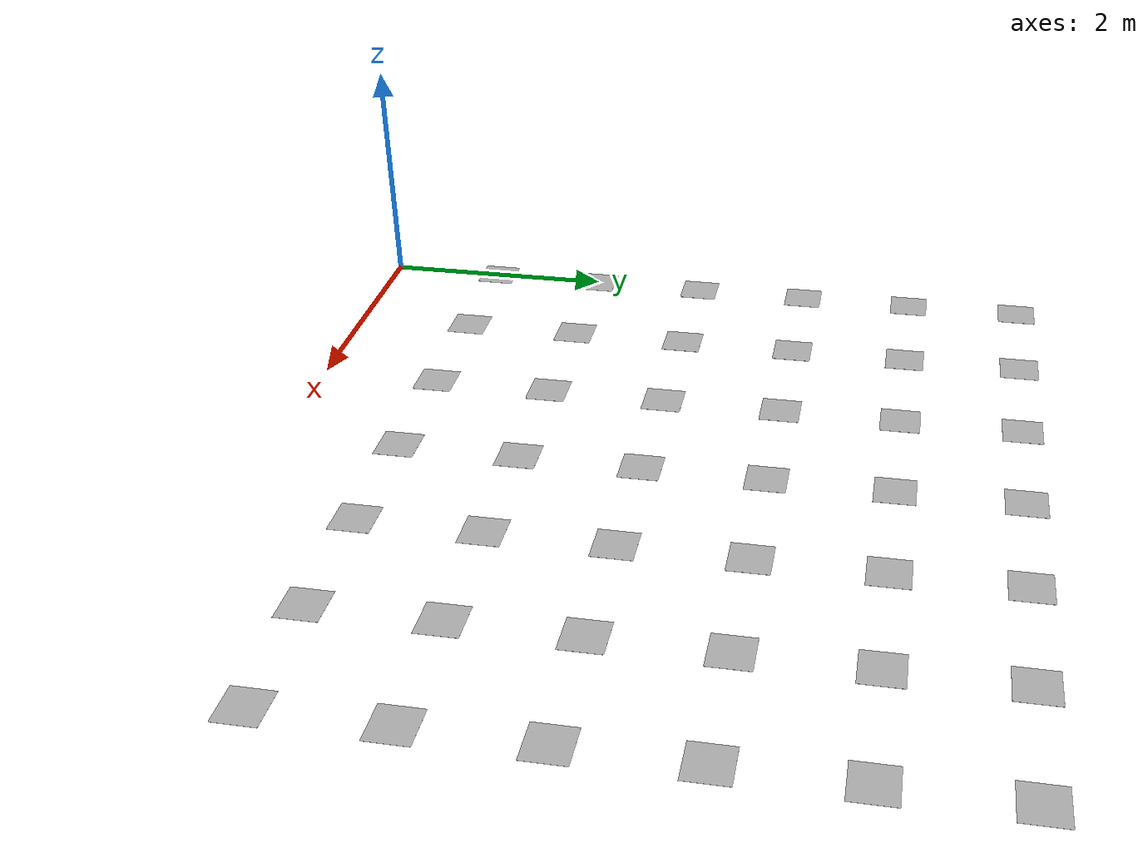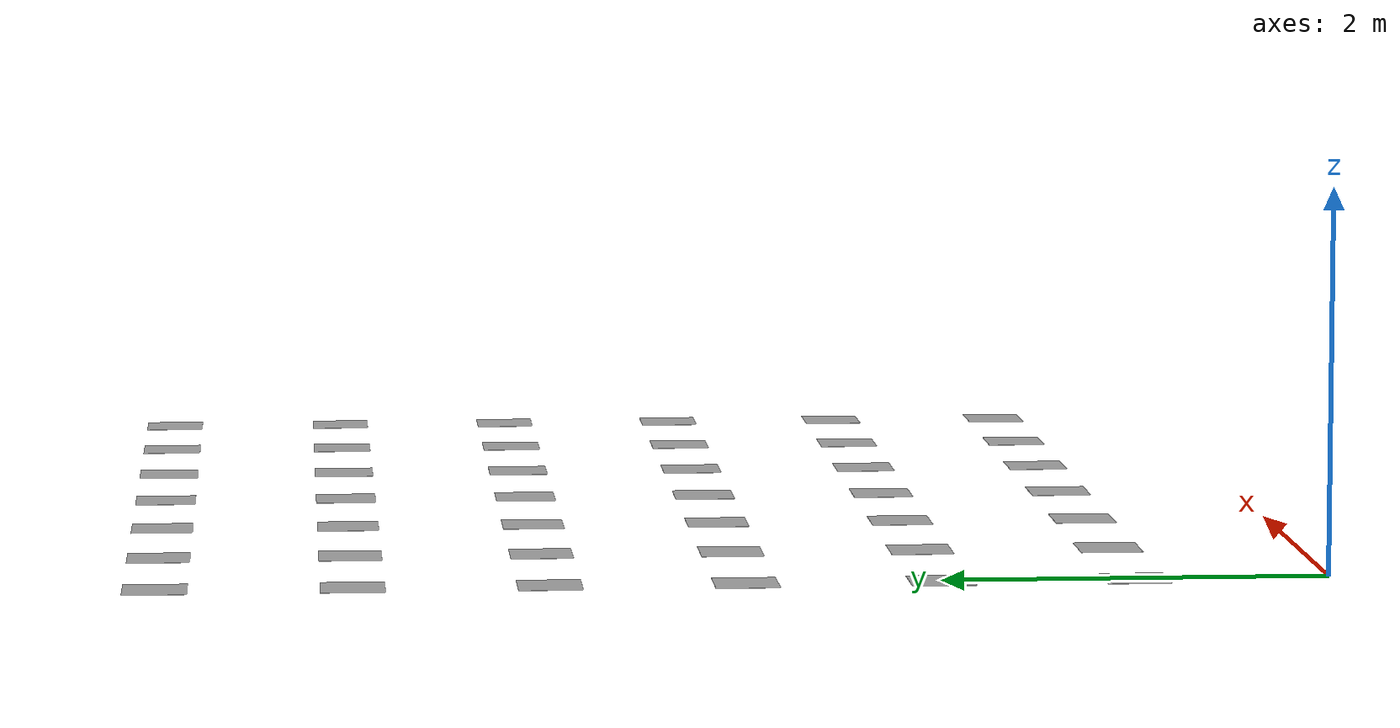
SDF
<?xml version='1.0' encoding='UTF-8'?>
<sdf version="1.6">
  <model name="aruco_marker">
    <static>true</static>
    <link name="link">

      <visual name="0">
        <pose>0.0 6.0 0 0 0 0</pose>
        <geometry>
          <box>
            <size>0.33 0.33 0.001</size>
          </box>
        </geometry>
        <material>
          <script>
            <uri>model://aruco_7x7/materials/scripts</uri>
            <uri>model://aruco_7x7/materials/textures</uri>
            <name>aruco/marker_2_0</name>
          </script>
        </material>
      </visual>

      <visual name="1">
        <pose>1.0 6.0 0 0 0 0</pose>
        <geometry>
          <box>
            <size>0.33 0.33 0.001</size>
          </box>
        </geometry>
        <material>
          <script>
            <uri>model://aruco_7x7/materials/scripts</uri>
            <uri>model://aruco_7x7/materials/textures</uri>
            <name>aruco/marker_2_1</name>
          </script>
        </material>
      </visual>

      <visual name="10">
        <pose>2.0 6.0 0 0 0 0</pose>
        <geometry>
          <box>
            <size>0.33 0.33 0.001</size>
          </box>
        </geometry>
        <material>
          <script>
            <uri>model://aruco_7x7/materials/scripts</uri>
            <uri>model://aruco_7x7/materials/textures</uri>
            <name>aruco/marker_2_10</name>
          </script>
        </material>
      </visual>

      <visual name="11">
        <pose>3.0 6.0 0 0 0 0</pose>
        <geometry>
          <box>
            <size>0.33 0.33 0.001</size>
          </box>
        </geometry>
        <material>
          <script>
            <uri>model://aruco_7x7/materials/scripts</uri>
            <uri>model://aruco_7x7/materials/textures</uri>
            <name>aruco/marker_2_11</name>
          </script>
        </material>
      </visual>

      <visual name="12">
        <pose>4.0 6.0 0 0 0 0</pose>
        <geometry>
          <box>
            <size>0.33 0.33 0.001</size>
          </box>
        </geometry>
        <material>
          <script>
            <uri>model://aruco_7x7/materials/scripts</uri>
            <uri>model://aruco_7x7/materials/textures</uri>
            <name>aruco/marker_2_12</name>
          </script>
        </material>
      </visual>

      <visual name="13">
        <pose>5.0 6.0 0 0 0 0</pose>
        <geometry>
          <box>
            <size>0.33 0.33 0.001</size>
          </box>
        </geometry>
        <material>
          <script>
            <uri>model://aruco_7x7/materials/scripts</uri>
            <uri>model://aruco_7x7/materials/textures</uri>
            <name>aruco/marker_2_13</name>
          </script>
        </material>
      </visual>

      <visual name="14">
        <pose>6.0 6.0 0 0 0 0</pose>
        <geometry>
          <box>
            <size>0.33 0.33 0.001</size>
          </box>
        </geometry>
        <material>
          <script>
            <uri>model://aruco_7x7/materials/scripts</uri>
            <uri>model://aruco_7x7/materials/textures</uri>
            <name>aruco/marker_2_14</name>
          </script>
        </material>
      </visual>

      <visual name="15">
        <pose>0.0 5.0 0 0 0 0</pose>
        <geometry>
          <box>
            <size>0.33 0.33 0.001</size>
          </box>
        </geometry>
        <material>
          <script>
            <uri>model://aruco_7x7/materials/scripts</uri>
            <uri>model://aruco_7x7/materials/textures</uri>
            <name>aruco/marker_2_15</name>
          </script>
        </material>
      </visual>

      <visual name="16">
        <pose>1.0 5.0 0 0 0 0</pose>
        <geometry>
          <box>
            <size>0.33 0.33 0.001</size>
          </box>
        </geometry>
        <material>
          <script>
            <uri>model://aruco_7x7/materials/scripts</uri>
            <uri>model://aruco_7x7/materials/textures</uri>
            <name>aruco/marker_2_16</name>
          </script>
        </material>
      </visual>

      <visual name="18">
        <pose>2.0 5.0 0 0 0 0</pose>
        <geometry>
          <box>
            <size>0.33 0.33 0.001</size>
          </box>
        </geometry>
        <material>
          <script>
            <uri>model://aruco_7x7/materials/scripts</uri>
            <uri>model://aruco_7x7/materials/textures</uri>
            <name>aruco/marker_2_18</name>
          </script>
        </material>
      </visual>

      <visual name="19">
        <pose>3.0 5.0 0 0 0 0</pose>
        <geometry>
          <box>
            <size>0.33 0.33 0.001</size>
          </box>
        </geometry>
        <material>
          <script>
            <uri>model://aruco_7x7/materials/scripts</uri>
            <uri>model://aruco_7x7/materials/textures</uri>
            <name>aruco/marker_2_19</name>
          </script>
        </material>
      </visual>

      <visual name="2">
        <pose>4.0 5.0 0 0 0 0</pose>
        <geometry>
          <box>
            <size>0.33 0.33 0.001</size>
          </box>
        </geometry>
        <material>
          <script>
            <uri>model://aruco_7x7/materials/scripts</uri>
            <uri>model://aruco_7x7/materials/textures</uri>
            <name>aruco/marker_2_2</name>
          </script>
        </material>
      </visual>

      <visual name="20">
        <pose>5.0 5.0 0 0 0 0</pose>
        <geometry>
          <box>
            <size>0.33 0.33 0.001</size>
          </box>
        </geometry>
        <material>
          <script>
            <uri>model://aruco_7x7/materials/scripts</uri>
            <uri>model://aruco_7x7/materials/textures</uri>
            <name>aruco/marker_2_20</name>
          </script>
        </material>
      </visual>

      <visual name="21">
        <pose>6.0 5.0 0 0 0 0</pose>
        <geometry>
          <box>
            <size>0.33 0.33 0.001</size>
          </box>
        </geometry>
        <material>
          <script>
            <uri>model://aruco_7x7/materials/scripts</uri>
            <uri>model://aruco_7x7/materials/textures</uri>
            <name>aruco/marker_2_21</name>
          </script>
        </material>
      </visual>

      <visual name="22">
        <pose>0.0 4.0 0 0 0 0</pose>
        <geometry>
          <box>
            <size>0.33 0.33 0.001</size>
          </box>
        </geometry>
        <material>
          <script>
            <uri>model://aruco_7x7/materials/scripts</uri>
            <uri>model://aruco_7x7/materials/textures</uri>
            <name>aruco/marker_2_22</name>
          </script>
        </material>
      </visual>

      <visual name="23">
        <pose>1.0 4.0 0 0 0 0</pose>
        <geometry>
          <box>
            <size>0.33 0.33 0.001</size>
          </box>
        </geometry>
        <material>
          <script>
            <uri>model://aruco_7x7/materials/scripts</uri>
            <uri>model://aruco_7x7/materials/textures</uri>
            <name>aruco/marker_2_23</name>
          </script>
        </material>
      </visual>

      <visual name="24">
        <pose>2.0 4.0 0 0 0 0</pose>
        <geometry>
          <box>
            <size>0.33 0.33 0.001</size>
          </box>
        </geometry>
        <material>
          <script>
            <uri>model://aruco_7x7/materials/scripts</uri>
            <uri>model://aruco_7x7/materials/textures</uri>
            <name>aruco/marker_2_24</name>
          </script>
        </material>
      </visual>

      <visual name="25">
        <pose>3.0 4.0 0 0 0 0</pose>
        <geometry>
          <box>
            <size>0.33 0.33 0.001</size>
          </box>
        </geometry>
        <material>
          <script>
            <uri>model://aruco_7x7/materials/scripts</uri>
            <uri>model://aruco_7x7/materials/textures</uri>
            <name>aruco/marker_2_25</name>
          </script>
        </material>
      </visual>

      <visual name="26">
        <pose>4.0 4.0 0 0 0 0</pose>
        <geometry>
          <box>
            <size>0.33 0.33 0.001</size>
          </box>
        </geometry>
        <material>
          <script>
            <uri>model://aruco_7x7/materials/scripts</uri>
            <uri>model://aruco_7x7/materials/textures</uri>
            <name>aruco/marker_2_26</name>
          </script>
        </material>
      </visual>

      <visual name="27">
        <pose>5.0 4.0 0 0 0 0</pose>
        <geometry>
          <box>
            <size>0.33 0.33 0.001</size>
          </box>
        </geometry>
        <material>
          <script>
            <uri>model://aruco_7x7/materials/scripts</uri>
            <uri>model://aruco_7x7/materials/textures</uri>
            <name>aruco/marker_2_27</name>
          </script>
        </material>
      </visual>

      <visual name="28">
        <pose>6.0 4.0 0 0 0 0</pose>
        <geometry>
          <box>
            <size>0.33 0.33 0.001</size>
          </box>
        </geometry>
        <material>
          <script>
            <uri>model://aruco_7x7/materials/scripts</uri>
            <uri>model://aruco_7x7/materials/textures</uri>
            <name>aruco/marker_2_28</name>
          </script>
        </material>
      </visual>

      <visual name="29">
        <pose>0.0 3.0 0 0 0 0</pose>
        <geometry>
          <box>
            <size>0.33 0.33 0.001</size>
          </box>
        </geometry>
        <material>
          <script>
            <uri>model://aruco_7x7/materials/scripts</uri>
            <uri>model://aruco_7x7/materials/textures</uri>
            <name>aruco/marker_2_29</name>
          </script>
        </material>
      </visual>

      <visual name="3">
        <pose>1.0 3.0 0 0 0 0</pose>
        <geometry>
          <box>
            <size>0.33 0.33 0.001</size>
          </box>
        </geometry>
        <material>
          <script>
            <uri>model://aruco_7x7/materials/scripts</uri>
            <uri>model://aruco_7x7/materials/textures</uri>
            <name>aruco/marker_2_3</name>
          </script>
        </material>
      </visual>

      <visual name="30">
        <pose>2.0 3.0 0 0 0 0</pose>
        <geometry>
          <box>
            <size>0.33 0.33 0.001</size>
          </box>
        </geometry>
        <material>
          <script>
            <uri>model://aruco_7x7/materials/scripts</uri>
            <uri>model://aruco_7x7/materials/textures</uri>
            <name>aruco/marker_2_30</name>
          </script>
        </material>
      </visual>

      <visual name="31">
        <pose>3.0 3.0 0 0 0 0</pose>
        <geometry>
          <box>
            <size>0.33 0.33 0.001</size>
          </box>
        </geometry>
        <material>
          <script>
            <uri>model://aruco_7x7/materials/scripts</uri>
            <uri>model://aruco_7x7/materials/textures</uri>
            <name>aruco/marker_2_31</name>
          </script>
        </material>
      </visual>

      <visual name="32">
        <pose>4.0 3.0 0 0 0 0</pose>
        <geometry>
          <box>
            <size>0.33 0.33 0.001</size>
          </box>
        </geometry>
        <material>
          <script>
            <uri>model://aruco_7x7/materials/scripts</uri>
            <uri>model://aruco_7x7/materials/textures</uri>
            <name>aruco/marker_2_32</name>
          </script>
        </material>
      </visual>

      <visual name="33">
        <pose>5.0 3.0 0 0 0 0</pose>
        <geometry>
          <box>
            <size>0.33 0.33 0.001</size>
          </box>
        </geometry>
        <material>
          <script>
            <uri>model://aruco_7x7/materials/scripts</uri>
            <uri>model://aruco_7x7/materials/textures</uri>
            <name>aruco/marker_2_33</name>
          </script>
        </material>
      </visual>

      <visual name="34">
        <pose>6.0 3.0 0 0 0 0</pose>
        <geometry>
          <box>
            <size>0.33 0.33 0.001</size>
          </box>
        </geometry>
        <material>
          <script>
            <uri>model://aruco_7x7/materials/scripts</uri>
            <uri>model://aruco_7x7/materials/textures</uri>
            <name>aruco/marker_2_34</name>
          </script>
        </material>
      </visual>

      <visual name="35">
        <pose>0.0 2.0 0 0 0 0</pose>
        <geometry>
          <box>
            <size>0.33 0.33 0.001</size>
          </box>
        </geometry>
        <material>
          <script>
            <uri>model://aruco_7x7/materials/scripts</uri>
            <uri>model://aruco_7x7/materials/textures</uri>
            <name>aruco/marker_2_35</name>
          </script>
        </material>
      </visual>

      <visual name="36">
        <pose>1.0 2.0 0 0 0 0</pose>
        <geometry>
          <box>
            <size>0.33 0.33 0.001</size>
          </box>
        </geometry>
        <material>
          <script>
            <uri>model://aruco_7x7/materials/scripts</uri>
            <uri>model://aruco_7x7/materials/textures</uri>
            <name>aruco/marker_2_36</name>
          </script>
        </material>
      </visual>

      <visual name="37">
        <pose>2.0 2.0 0 0 0 0</pose>
        <geometry>
          <box>
            <size>0.33 0.33 0.001</size>
          </box>
        </geometry>
        <material>
          <script>
            <uri>model://aruco_7x7/materials/scripts</uri>
            <uri>model://aruco_7x7/materials/textures</uri>
            <name>aruco/marker_2_37</name>
          </script>
        </material>
      </visual>

      <visual name="38">
        <pose>3.0 2.0 0 0 0 0</pose>
        <geometry>
          <box>
            <size>0.33 0.33 0.001</size>
          </box>
        </geometry>
        <material>
          <script>
            <uri>model://aruco_7x7/materials/scripts</uri>
            <uri>model://aruco_7x7/materials/textures</uri>
            <name>aruco/marker_2_38</name>
          </script>
        </material>
      </visual>

      <visual name="39">
        <pose>4.0 2.0 0 0 0 0</pose>
        <geometry>
          <box>
            <size>0.33 0.33 0.001</size>
          </box>
        </geometry>
        <material>
          <script>
            <uri>model://aruco_7x7/materials/scripts</uri>
            <uri>model://aruco_7x7/materials/textures</uri>
            <name>aruco/marker_2_39</name>
          </script>
        </material>
      </visual>

      <visual name="4">
        <pose>5.0 2.0 0 0 0 0</pose>
        <geometry>
          <box>
            <size>0.33 0.33 0.001</size>
          </box>
        </geometry>
        <material>
          <script>
            <uri>model://aruco_7x7/materials/scripts</uri>
            <uri>model://aruco_7x7/materials/textures</uri>
            <name>aruco/marker_2_4</name>
          </script>
        </material>
      </visual>

      <visual name="40">
        <pose>6.0 2.0 0 0 0 0</pose>
        <geometry>
          <box>
            <size>0.33 0.33 0.001</size>
          </box>
        </geometry>
        <material>
          <script>
            <uri>model://aruco_7x7/materials/scripts</uri>
            <uri>model://aruco_7x7/materials/textures</uri>
            <name>aruco/marker_2_40</name>
          </script>
        </material>
      </visual>

      <visual name="41">
        <pose>0.0 1.0 0 0 0 0</pose>
        <geometry>
          <box>
            <size>0.33 0.33 0.001</size>
          </box>
        </geometry>
        <material>
          <script>
            <uri>model://aruco_7x7/materials/scripts</uri>
            <uri>model://aruco_7x7/materials/textures</uri>
            <name>aruco/marker_2_41</name>
          </script>
        </material>
      </visual>

      <visual name="42">
        <pose>1.0 1.0 0 0 0 0</pose>
        <geometry>
          <box>
            <size>0.33 0.33 0.001</size>
          </box>
        </geometry>
        <material>
          <script>
            <uri>model://aruco_7x7/materials/scripts</uri>
            <uri>model://aruco_7x7/materials/textures</uri>
            <name>aruco/marker_2_42</name>
          </script>
        </material>
      </visual>

      <visual name="43">
        <pose>2.0 1.0 0 0 0 0</pose>
        <geometry>
          <box>
            <size>0.33 0.33 0.001</size>
          </box>
        </geometry>
        <material>
          <script>
            <uri>model://aruco_7x7/materials/scripts</uri>
            <uri>model://aruco_7x7/materials/textures</uri>
            <name>aruco/marker_2_43</name>
          </script>
        </material>
      </visual>

      <visual name="44">
        <pose>3.0 1.0 0 0 0 0</pose>
        <geometry>
          <box>
            <size>0.33 0.33 0.001</size>
          </box>
        </geometry>
        <material>
          <script>
            <uri>model://aruco_7x7/materials/scripts</uri>
            <uri>model://aruco_7x7/materials/textures</uri>
            <name>aruco/marker_2_44</name>
          </script>
        </material>
      </visual>

      <visual name="45">
        <pose>4.0 1.0 0 0 0 0</pose>
        <geometry>
          <box>
            <size>0.33 0.33 0.001</size>
          </box>
        </geometry>
        <material>
          <script>
            <uri>model://aruco_7x7/materials/scripts</uri>
            <uri>model://aruco_7x7/materials/textures</uri>
            <name>aruco/marker_2_45</name>
          </script>
        </material>
      </visual>

      <visual name="46">
        <pose>5.0 1.0 0 0 0 0</pose>
        <geometry>
          <box>
            <size>0.33 0.33 0.001</size>
          </box>
        </geometry>
        <material>
          <script>
            <uri>model://aruco_7x7/materials/scripts</uri>
            <uri>model://aruco_7x7/materials/textures</uri>
            <name>aruco/marker_2_46</name>
          </script>
        </material>
      </visual>

      <visual name="47">
        <pose>6.0 1.0 0 0 0 0</pose>
        <geometry>
          <box>
            <size>0.33 0.33 0.001</size>
          </box>
        </geometry>
        <material>
          <script>
            <uri>model://aruco_7x7/materials/scripts</uri>
            <uri>model://aruco_7x7/materials/textures</uri>
            <name>aruco/marker_2_47</name>
          </script>
        </material>
      </visual>
        </link>
  </model>
</sdf>
